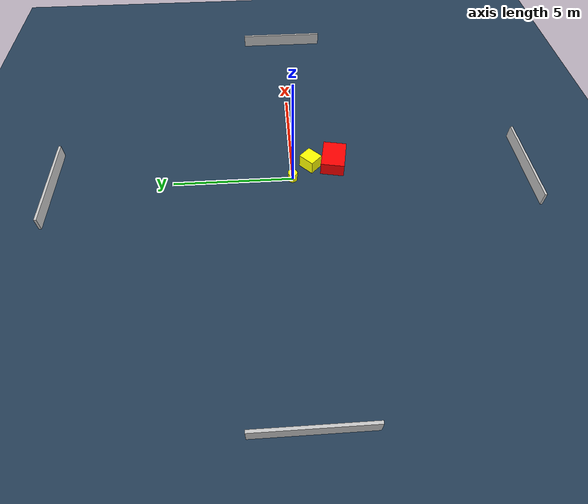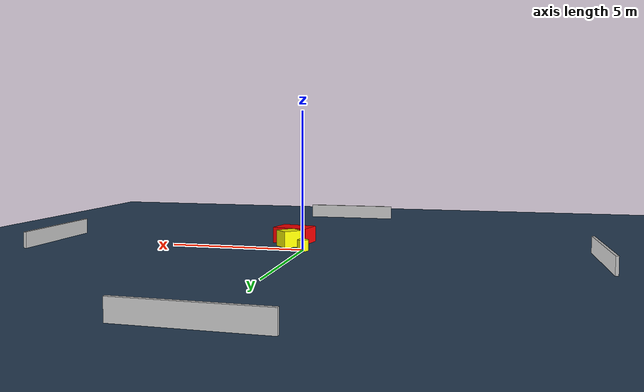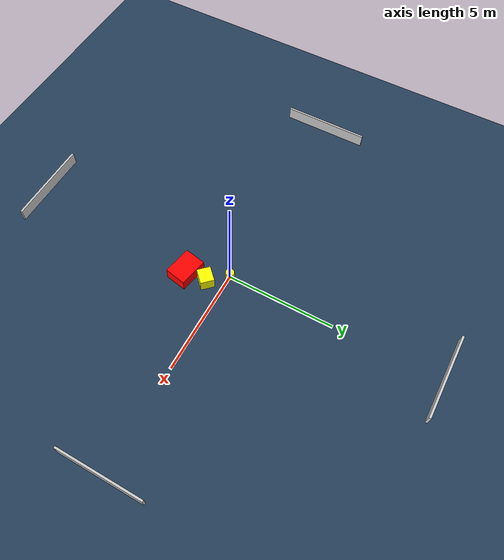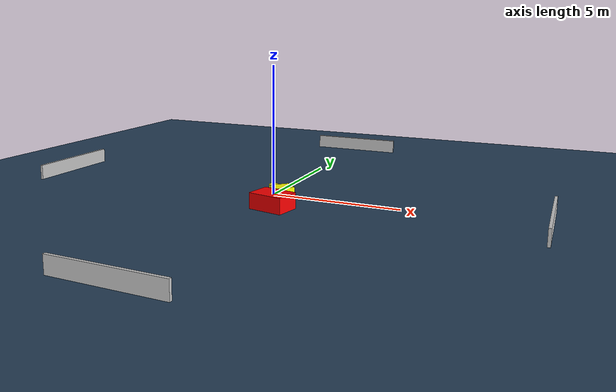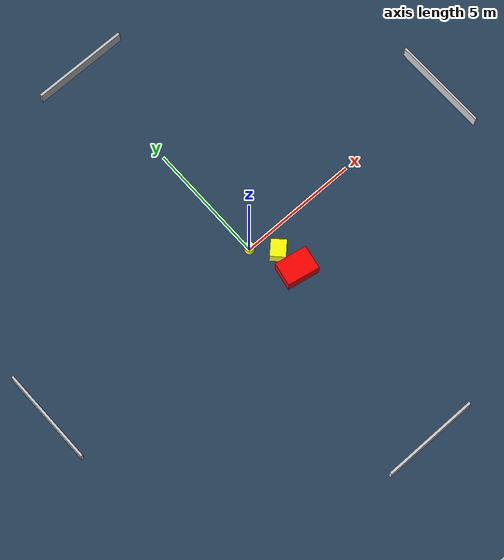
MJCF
<?xml version="1.0" ?>
<mujoco model="generated_environment">
  <option timestep="0.01" integrator="RK4" cone="elliptic"/>
  <default>
    <geom density="1"/>
  </default>
  <asset>
    <texture builtin="gradient" height="3072" name="skybox" rgb1="0.3 0.5 0.7" rgb2="0 0 0" type="skybox" width="512"/>
    <texture builtin="checker" height="300" name="groundplane" rgb1="0.2 0.3 0.4" rgb2="0.1 0.2 0.3" type="2d" width="300"/>
    <material name="groundplane" reflectance="0.2" texrepeat="5 5" texture="groundplane"/>
  </asset>
  <worldbody>
    <light dir="0 0 -1" directional="true" pos="0 0 1.5"/>
    <geom condim="3" friction="0.5 0.005 0.001" material="groundplane" name="floor" pos="0 0 0" size="0 0 0.05" type="plane"/>
    <body name="walls">
      <geom name="wall_1" condim="4" pos="-10.0 0.0 0.3" rgba="0.800000011920929 0.800000011920929 0.800000011920929 1.0" size="0.05 2.0 0.3" type="box"/>
      <geom name="wall_2" condim="4" pos="10.0 0.0 0.3" rgba="0.800000011920929 0.800000011920929 0.800000011920929 1.0" size="0.05 2.0 0.3" type="box"/>
      <geom name="wall_3" condim="4" pos="0.0 -10.0 0.3" rgba="0.800000011920929 0.800000011920929 0.800000011920929 1.0" size="2.0 0.05 0.3" type="box"/>
      <geom name="wall_4" condim="4" pos="0.0 10.0 0.3" rgba="0.800000011920929 0.800000011920929 0.800000011920929 1.0" size="2.0 0.05 0.3" type="box"/>
    </body>
    <body name="robot">
      <joint name="joint_x" type="slide" pos="0 0 0" axis="1 0 0"/>
      <joint name="joint_y" type="slide" pos="0 0 0" axis="0 1 0"/>
      <geom name="robot" type="cylinder" pos="0.0 0.0 0.2" size="0.2 0.2 0.0" mass="5.0" friction="1.0 0.005 0.0001" condim="4" rgba="1.0 1.0 0.0 1.0"/>
    </body>
    <body name="obstacle_1_movable">
      <geom name="obstacle_1_movable" condim="4" pos="0.7380018169469955 -0.8149761287969153 0.3" euler="0 0 224.57607188589057" friction="0.0 0.005 0.001" rgba="1.0 1.0 0.0 1.0" size="0.35601703717757627 0.31456539506400416 0.3" type="box" mass="0.1"/>
      <joint type="free"/>
    </body>
    <body name="obstacle_2_static">
      <geom name="obstacle_2_static" condim="4" pos="0.794703274485934 -1.8160546118950756 0.3" euler="0 0 349.0563499983244" friction="0.0 0.005 0.001" rgba="1.0 0.0 0.0 1.0" size="0.6759762120381596 0.49621723236272713 0.3" type="box"/>
    </body>
  </worldbody>
  <actuator>
    <motor name="actuator_x" joint="joint_x" gear="1" ctrlrange="-1 1"/>
    <motor name="actuator_y" joint="joint_y" gear="1" ctrlrange="-1 1"/>
  </actuator>
</mujoco>
